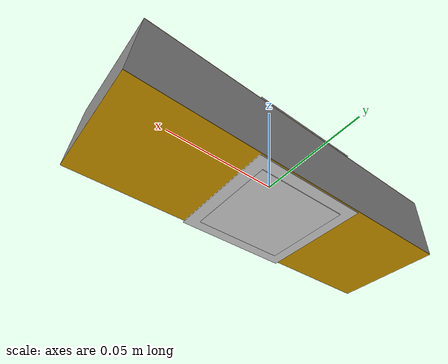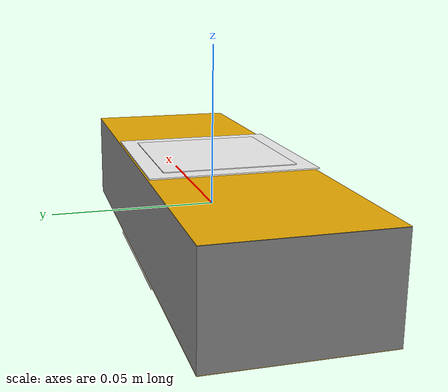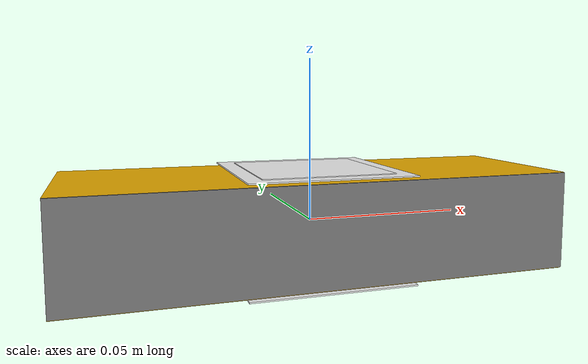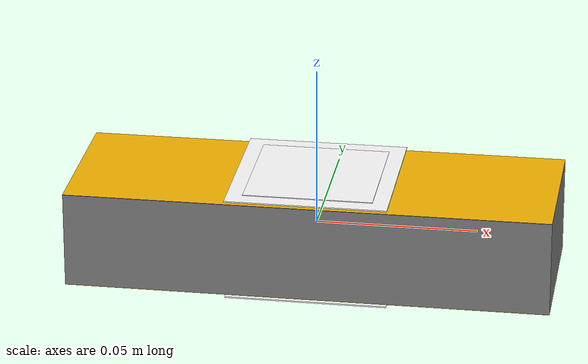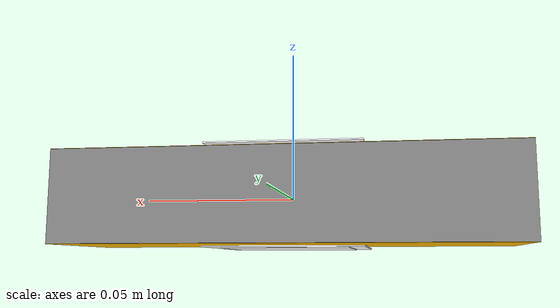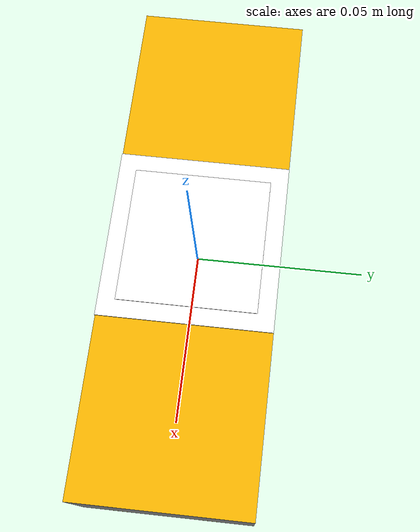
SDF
<?xml version="1.0" ?>
<sdf version="1.9">
  <model name="yellow_crate">
    <static>false</static>
    <link name="link">
      <inertial>
        <mass>0.17</mass>
        <inertia>
          <ixx>0.166</ixx>
          <iyy>0.166</iyy>
          <izz>0.166</izz>
          <ixy>0</ixy>
          <ixz>0</ixz>
          <iyz>0</iyz>
        </inertia>
      </inertial>

      <collision name="collision">
        <geometry>
          <box>
            <size>0.15 0.05 0.03</size>
          </box>
        </geometry>
        <surface>
          <friction>
            <ode>
              <mu>1.0</mu>
              <mu2>1.0</mu2>
            </ode>
          </friction>
        </surface>
      </collision>

      <!-- Seitenflächen: grau -->
      <visual name="side_faces">
        <geometry>
          <box>
            <size>0.15 0.05 0.03</size>
          </box>
        </geometry>
        <material>
          <ambient>0.5 0.5 0.5 1</ambient>
          <diffuse>0.5 0.5 0.5 1</diffuse>
        </material>
      </visual>

      <!-- Oberseite: blau -->
      <visual name="top_face">
        <pose>0 0 0.0151 0 0 0</pose>
        <geometry>
          <plane>
            <normal>0 0 1</normal>
            <size>0.15 0.05</size>
          </plane>
        </geometry>
        <material>
          <diffuse>0.969 0.710 0.0 1</diffuse>
        </material>
      </visual>

      <!-- Unterseite: blau -->
      <visual name="bottom_face">
        <pose>0 0 -0.0151 0 0 0</pose>
        <geometry>
          <plane>
            <normal>0 0 -1</normal>
            <size>0.15 0.05</size>
          </plane>
        </geometry>
        <material>
          <diffuse>0.969 0.710 0.0 1</diffuse>
        </material>
      </visual>

      <!-- ArUco Marker oben -->
      <visual name="marker_border">
        <pose>0 0 0.016 0 0 0</pose>
      <geometry>
        <box>
          <size>0.05 0.05 0.0004</size>
        </box>
      </geometry>
      <material>
        <diffuse>1 1 1 1</diffuse> <!-- Weiß -->
      </material>
    </visual>
      <visual name="aruco_marker">
        <pose>0 0 0.0162 0 0 0</pose>
        <geometry>
          <box>
            <size>0.04 0.04 0.0005</size>
          </box>
        </geometry>
        <material>
          <diffuse>1 1 1 1</diffuse>
          <pbr>
            <metal>
              <albedo_map>file://models/yellow_crate/aruco_47.png</albedo_map>
              <metalness>0.0</metalness>
              <roughness>0.8</roughness>
            </metal>
          </pbr>
        </material>
      </visual>

      <visual name="marker_border_down">
        <pose>0 0 -0.016 0 0 0</pose>
      <geometry>
        <box>
          <size>0.05 0.05 0.0004</size>
        </box>
      </geometry>
      <material>
        <diffuse>1 1 1 1</diffuse> <!-- Weiß -->
      </material>
    </visual>
      <visual name="aruco_marker_down">
        <pose>0 0 -0.0162 3.141 0 0</pose>
        <geometry>
          <box>
            <size>0.04 0.04 0.0005</size>
          </box>
        </geometry>
        <material>
          <diffuse>1 1 1 1</diffuse>
          <pbr>
            <metal>
              <albedo_map>file://models/yellow_crate/aruco_47.png</albedo_map>
              <metalness>0.0</metalness>
              <roughness>0.8</roughness>
            </metal>
          </pbr>
        </material>
      </visual>

    </link>
  </model>
</sdf>
